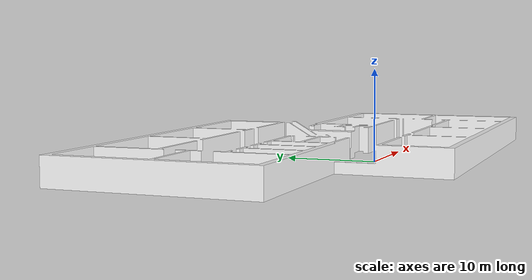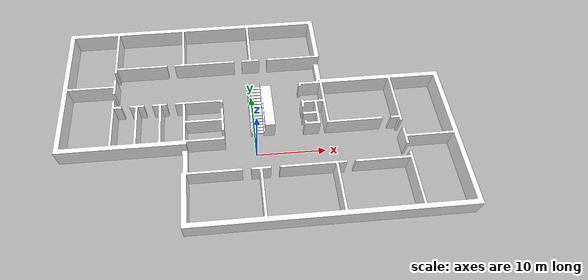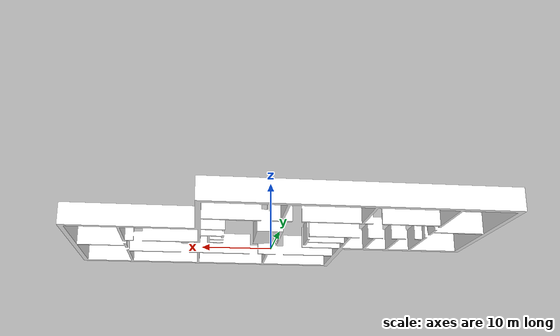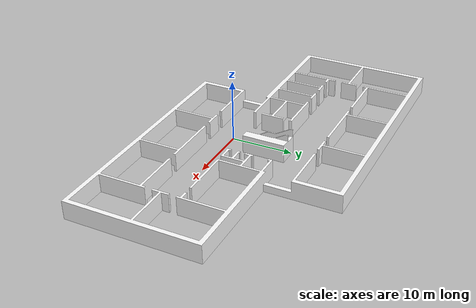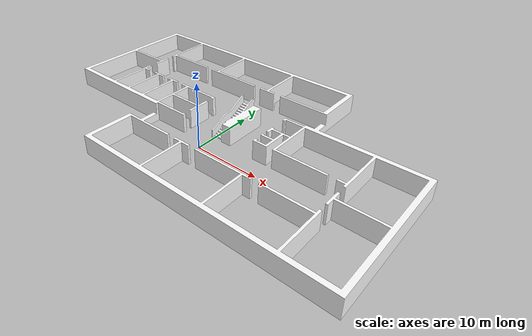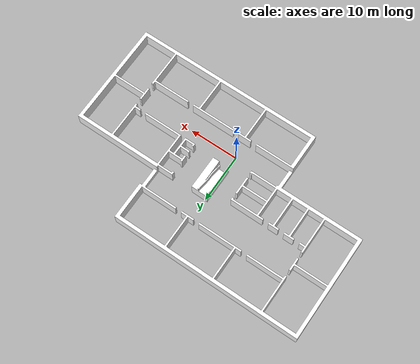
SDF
<?xml version="1.0" ?>
<sdf version="1.5">
  <model name="School_4E">
    <link name="link">
      <collision name="collision">
        <geometry>
          <mesh>
            <uri>model://school_4E/meshes/school_4_EMPTY.dae</uri>
          </mesh>
        </geometry>
      </collision>
      <visual name="visual">
        <geometry>
          <mesh>
            <uri>model://school_4E/meshes/school_4_EMPTY.dae</uri>
          </mesh>
        </geometry>
      </visual>
    </link>
  </model>
</sdf>
